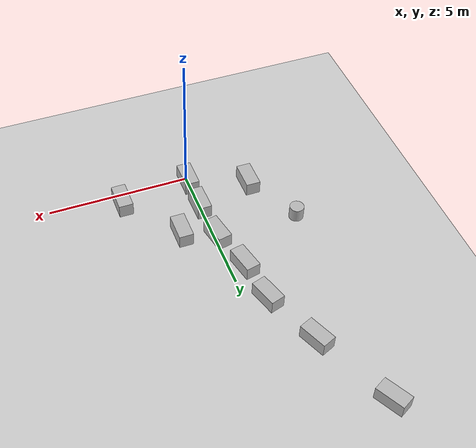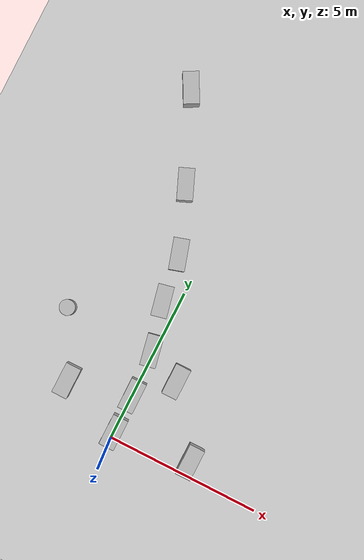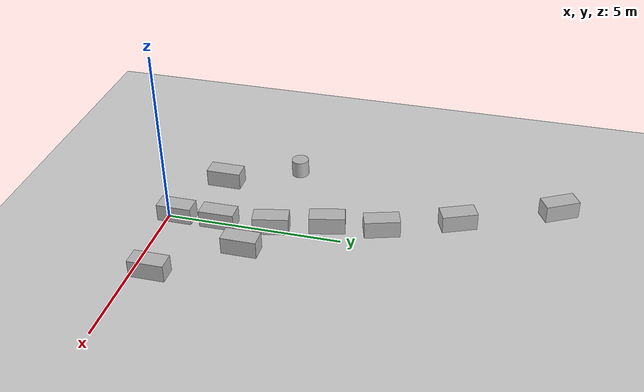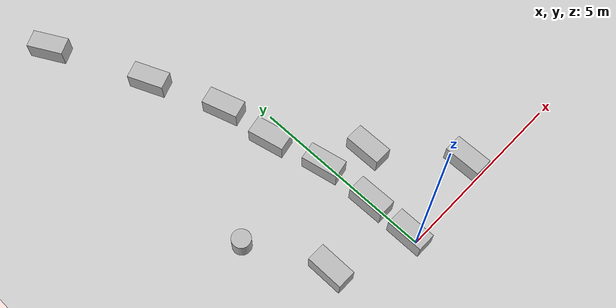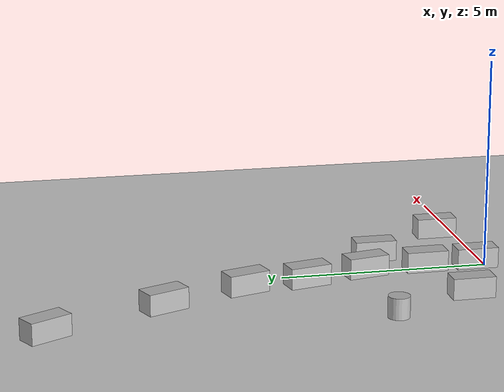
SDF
<?xml version="1.0" ?>
<sdf version="1.6">

  <world name="complex_parking_world">
    <!-- Include necessary plugins -->
    <include>
      <uri>model://sun</uri>
    </include>
    <include>
      <uri>model://ground_plane</uri>
    </include>

    <!-- Ground Plane -->
    <model name="ground_plane">
      <static>1</static>
      <link name="link">
        <collision name="collision">
          <geometry>
            <plane>
              <normal>0 0 1</normal>
              <size>100 100</size>
            </plane>
          </geometry>
        </collision>
        <visual name="visual">
          <geometry>
            <plane>
              <normal>0 0 1</normal>
              <size>100 100</size>
            </plane>
          </geometry>
        </visual>
      </link>
    </model>

    <!-- Parked Cars Following a Circular Path -->
    <model name="parked_cars">
      <static>true</static>

      <!-- Car 1 -->
      <link name="car_1">
        <pose>0 0.25 0.25 0 0 0</pose>
        <collision name="collision">
          <geometry>
            <box>
              <size>0.5 1 0.5</size>
            </box>
          </geometry>
        </collision>
        <visual name="visual">
          <geometry>
            <box>
              <size>0.5 1 0.5</size>
            </box>
          </geometry>
        </visual>
      </link>

      <!-- Parking Gap 1 (1.25m) -->

      <!-- Car 2 -->
      <link name="car_2">
        <pose>-0.005 1.5 0.25 0 0 0.01</pose> <!-- Position shifted, yaw = 90° -->
        <collision name="collision">
          <geometry>
            <box>
              <size>0.5 1 0.5</size>
            </box>
          </geometry>
        </collision>
        <visual name="visual">
          <geometry>
            <box>
              <size>0.5 1 0.5</size>
            </box>
          </geometry>
        </visual>
      </link>

      <!-- Car 3 -->
      <link name="car_3">
        <pose>-0.1 3 0.25 0 0 0.2</pose>
        <collision name="collision">
          <geometry>
            <box>
              <size>0.5 1 0.5</size>
            </box>
          </geometry>
        </collision>
        <visual name="visual">
          <geometry>
            <box>
              <size>0.5 1 0.5</size>
            </box>
          </geometry>
        </visual>
      </link>

      <!-- Car 4 -->
      <link name="car_4">
        <pose>-0.5 4.5 0.25 0 0 0.22</pose>
        <collision name="collision">
          <geometry>
            <box>
              <size>0.5 1 0.5</size>
            </box>
          </geometry>
        </collision>
        <visual name="visual">
          <geometry>
            <box>
              <size>0.5 1 0.5</size>
            </box>
          </geometry>
        </visual>
      </link>

      <!-- Car 5-->
      <link name="car_5">
        <pose>-0.7 6 0.25 0 0 0.3</pose>
        <collision name="collision">
          <geometry>
            <box>
              <size>0.5 1 0.5</size>
            </box>
          </geometry>
        </collision>
        <visual name="visual">
          <geometry>
            <box>
              <size>0.5 1 0.5</size>
            </box>
          </geometry>
        </visual>
      </link>

      <!-- Car 6-->
      <link name="car_6">
        <pose>-1.5 8 0.25 0 0 0.4</pose>
        <collision name="collision">
          <geometry>
            <box>
              <size>0.5 1 0.5</size>
            </box>
          </geometry>
        </collision>
        <visual name="visual">
          <geometry>
            <box>
              <size>0.5 1 0.5</size>
            </box>
          </geometry>
        </visual>
      </link>

      <!-- Car 7-->
      <link name="car_7">
        <pose>-2.7 10.7 0.25 0 0 0.5</pose>
        <collision name="collision">
          <geometry>
            <box>
              <size>0.5 1 0.5</size>
            </box>
          </geometry>
        </collision>
        <visual name="visual">
          <geometry>
            <box>
              <size>0.5 1 0.5</size>
            </box>
          </geometry>
        </visual>
      </link>
    </model>

    <!-- Additional Obstacles -->
    <model name="obstacles">
      <static>true</static>

      <!-- Obstacle Behind Parking Gap 1 -->
      <link name="obstacle_behind_parking_1">
        <pose>2.5 0.5 0.25 0 0 0</pose>
        <collision name="collision">
          <geometry>
            <box>
              <size>0.5 1 0.5</size>
            </box>
          </geometry>
        </collision>
        <visual name="visual">
          <geometry>
            <box>
              <size>0.5 1 0.5</size>
            </box>
          </geometry>
        </visual>
      </link>

      <!-- Obstacle Between Parking Spaces -->
      <link name="obstacle_between_parking">
        <pose>1 2.5 0.25 0 0 0</pose>
        <collision name="collision">
          <geometry>
            <box>
              <size>0.5 1 0.5</size>
            </box>
          </geometry>
        </collision>
        <visual name="visual">
          <geometry>
            <box>
              <size>0.5 1 0.5</size>
            </box>
          </geometry>
        </visual>
      </link>

      <!-- Obstacle on Left Side -->
      <link name="left_side_obstacle">
        <pose>-2 1 0.25 0 0 0</pose>
        <collision name="collision">
          <geometry>
            <box>
              <size>0.5 1 0.5</size>
            </box>
          </geometry>
        </collision>
        <visual name="visual">
          <geometry>
            <box>
              <size>0.5 1 0.5</size>
            </box>
          </geometry>
        </visual>
      </link>

      <!-- Cylinder Obstacle -->
      <link name="cylinder_obstacle">
        <pose>-3 3 0.25 0 0 0</pose>
        <collision name="collision">
          <geometry>
            <cylinder>
              <radius>0.25</radius>
              <length>0.5</length>
            </cylinder>
          </geometry>
        </collision>
        <visual name="visual">
          <geometry>
            <cylinder>
              <radius>0.25</radius>
              <length>0.5</length>
            </cylinder>
          </geometry>
        </visual>
      </link>
    </model>

    <!-- Physics -->
    <physics name="default_physics" default="true" type="ode">
      <gravity>0 0 -9.8</gravity>
    </physics>
  </world>
</sdf>
